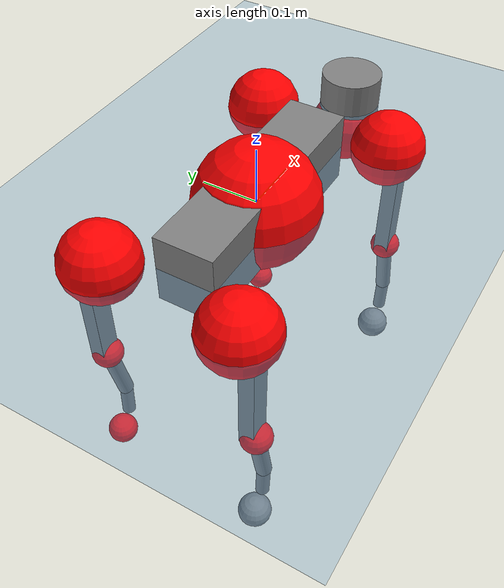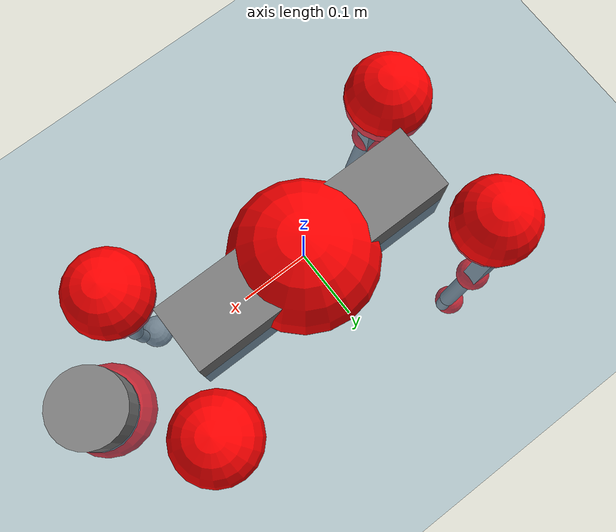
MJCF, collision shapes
<mujoco model="go2">
  <compiler angle="radian" assetdir="assets" balanceinertia="true" inertiafromgeom="false"/>

  <option timestep="0.005" density="1.2" viscosity="2e-05"/>

  <size nkey="1"/>

  <visual>
    <quality shadowsize="8192"/>
    <map shadowclip="0.5"/>
  </visual>

  <default>
    <default class="/">
      <geom contype="0" conaffinity="0" group="1" solref="-1000 -80"/>
      <site size="0.01 0.005 0.005" group="5"/>
      <general forcelimited="true" biastype="affine" gainprm="20" biasprm="0 -20 -0.5"/>
      <default class="go2">
        <joint armature="0.01" damping="0.01" frictionloss="0.2"/>
        <geom condim="1" margin="0.001"/>
        <default class="visual">
          <geom type="mesh" group="2"/>
        </default>
        <default class="collision">
          <geom group="3"/>
          <default class="foot">
            <geom size="0.022 0 0" condim="6" priority="1" friction="0.8 0.02 0.01" solimp="0.015 1 0.022"/>
          </default>
        </default>
        <default class="reward_collision_sphere">
          <geom group="5" rgba="1 0 0 1"/>
        </default>
      </default>
    </default>
  </default>

  <asset>
    <texture type="skybox" colorspace="auto" name="//unnamed_texture_0" builtin="gradient" rgb1="0.95 0.95 0.95" rgb2="0.95 0.95 0.95" width="100" height="600"/>
    <texture type="2d" colorspace="auto" name="texplane" builtin="checker" rgb1="0.345 0.575 0.748" rgb2="0.345 0.575 0.748" markrgb="1 1 1" width="512" height="512"/>
    <material name="MatPlane" class="/" texture="texplane" texuniform="true" texrepeat="2 2" specular="0.9"/>
    <material name="metal" class="/" rgba="0.9 0.95 0.95 1"/>
    <material name="black" class="/" rgba="0 0 0 1"/>
    <material name="white" class="/"/>
    <material name="gray" class="/" rgba="0.671705 0.692426 0.77427 1"/>
    <mesh name="base_0" class="/" file="base_0.obj"/>
    <mesh name="base_1" class="/" file="base_1.obj"/>
    <mesh name="base_2" class="/" file="base_2.obj"/>
    <mesh name="base_3" class="/" file="base_3.obj"/>
    <mesh name="base_4" class="/" file="base_4.obj"/>
    <mesh name="hip_0" class="/" file="hip_0.obj"/>
    <mesh name="hip_1" class="/" file="hip_1.obj"/>
    <mesh name="thigh_0" class="/" file="thigh_0.obj"/>
    <mesh name="thigh_1" class="/" file="thigh_1.obj"/>
    <mesh name="thigh_mirror_0" class="/" file="thigh_mirror_0.obj"/>
    <mesh name="thigh_mirror_1" class="/" file="thigh_mirror_1.obj"/>
    <mesh name="calf_0" class="/" file="calf_0.obj"/>
    <mesh name="calf_1" class="/" file="calf_1.obj"/>
    <mesh name="calf_mirror_0" class="/" file="calf_mirror_0.obj"/>
    <mesh name="calf_mirror_1" class="/" file="calf_mirror_1.obj"/>
    <mesh name="foot" class="/" file="foot.obj"/>
  </asset>

  <worldbody>
    <geom name="floor" class="/" size="100 100 0.125" type="plane" group="0" material="MatPlane"/>
    <light name="toplight_shadow" class="/" pos="0 0 5" dir="0.0990148 0.0990148 -0.990148" type="directional" ambient="0.04 0.04 0.04" diffuse="0.55 0.55 0.55" specular="0.12 0.12 0.12"/>
    <light name="toplight_fill" class="/" pos="0 0 5" dir="0.0990148 0.0990148 -0.990148" type="directional" castshadow="false" ambient="0.04 0.04 0.04" diffuse="0.3 0.3 0.3" specular="0.08 0.08 0.08"/>
    <body name="trunk" childclass="go2" pos="0.000810403 0.000434081 -0.0020044" quat="0.999999 0.00157351 -0.000126079 0.000272376">
      <inertial pos="0.0370419 0.00854017 -0.00269931" quat="0.000334544 0.712558 -0.00214673 0.70161" mass="7.95483" diaginertia="0.278701 0.102695 0.0325594"/>
      <joint name="//unnamed_joint_0" type="free" armature="0" damping="0" frictionloss="0"/>
      <geom name="//unnamed_geom_1" class="visual" material="black" mesh="base_0"/>
      <geom name="//unnamed_geom_2" class="visual" material="black" mesh="base_1"/>
      <geom name="//unnamed_geom_3" class="visual" material="black" mesh="base_2"/>
      <geom name="//unnamed_geom_4" class="visual" material="white" mesh="base_3"/>
      <geom name="//unnamed_geom_5" class="visual" material="gray" mesh="base_4"/>
      <geom name="trunk_1" class="collision" size="0.204938 0.0509348 0.0621023" type="box"/>
      <geom name="trunk_2" class="collision" size="0.0544757 0.0490281" pos="0.34317 0 0.0105472" type="cylinder"/>
      <geom name="trunk_3" class="collision" size="0.0512072" pos="0.352803 0 -0.0632834"/>
      <geom name="//unnamed_geom_9" class="reward_collision_sphere" size="0.108951"/>
      <geom name="//unnamed_geom_10" class="reward_collision_sphere" size="0.0653708" pos="0.33715 0 -0.0474626"/>
      <site name="imu" pos="-0.0792513 0.00275523 0.0928208" size="0.0108951"/>
      <camera name="track" pos="0 -2.01942 0" quat="0.707107 0.707107 0 0" mode="trackcom"/>
      <camera name="ego_camera" pos="0.375681 0 0.0474626" quat="-0.5 -0.5 0.5 0.5"/>
      <body name="FL_hip" pos="0.240071 0.0546449 0.00746843" quat="1 0.000355523 0.000323182 0.000282438">
        <inertial pos="-0.00624156 0.00890326 -0.00153987" quat="0.497932 0.498915 0.505331 0.497783" mass="0.954325" diaginertia="0.00261326 0.000784982 0.000718745"/>
        <joint name="FL_hip_joint" pos="0 0 0" axis="0.999792 0.00203995 -0.0202868" stiffness="0.0283318" range="-1.04169 0.989913" armature="0.011842" damping="0" frictionloss="0.280882"/>
        <geom name="//unnamed_geom_11" class="visual" material="metal" mesh="hip_0"/>
        <geom name="//unnamed_geom_12" class="visual" material="gray" mesh="hip_1"/>
        <geom name="//unnamed_geom_13" class="collision" size="0.0501176 0.0217903" pos="0 0.0807769 0" quat="0.707107 0.707107 0 0" type="cylinder"/>
        <geom name="//unnamed_geom_14" class="reward_collision_sphere" size="0.0653708" pos="0 0.0706798 0"/>
        <body name="FL_thigh" pos="0.00470225 0.085969 -0.00416943" quat="0.99999 0.000387701 -0.00441677 0.000978825">
          <inertial pos="-0.00240387 -0.0217175 -0.0388292" quat="0.819575 0.0959326 -0.0508426 0.562591" mass="1.57663" diaginertia="0.0148287 0.00684528 0.00110674"/>
          <joint name="FL_thigh_joint" pos="0 0 0" axis="-0.00203708 0.999998 0.000751614" range="-1.74416 3.37743" armature="0.0113874" damping="0" frictionloss="0.267868"/>
          <geom name="//unnamed_geom_15" class="visual" material="metal" mesh="thigh_0"/>
          <geom name="//unnamed_geom_16" class="visual" material="gray" mesh="thigh_1"/>
          <geom name="//unnamed_geom_17" class="collision" size="0.116033 0.0133465 0.0185217" pos="0 0 -0.112328" quat="0.707107 0 0.707107 0" type="box"/>
          <body name="FL_calf" pos="-0.00176365 -0.00902444 -0.222328" quat="1 7.50231e-05 0.000147489 0.000214461">
            <inertial pos="0.006157 -0.000654251 -0.145524" quat="0.711375 0.00978581 -0.00386897 0.702733" mass="0.315424" diaginertia="0.00413121 0.0015552 6.8975e-05"/>
            <joint name="FL_calf_joint" pos="0 0 0" axis="0.00292275 0.999995 0.000778215" stiffness="0.0414349" range="-2.83463 -0.805197" armature="0.00998725" damping="0.0151035" frictionloss="0.235256"/>
            <geom name="//unnamed_geom_18" class="visual" material="gray" mesh="calf_0"/>
            <geom name="//unnamed_geom_19" class="visual" material="black" mesh="calf_1"/>
            <geom name="FL_calf0" class="collision" size="0.0130742 0.0653708" pos="0.00963285 0 -0.0632834" quat="0.994493 0 -0.104807 0" type="cylinder"/>
            <geom name="//unnamed_geom_21" class="collision" size="0.0119847 0.0354092" pos="0.0240821 0 -0.156099" quat="0.999688 0 0.0249974 0" type="cylinder"/>
            <geom name="//unnamed_geom_22" class="visual" pos="0 0 -0.224656" quat="1 0 0 0" material="black" mesh="foot"/>
            <geom name="FL_foot" class="foot" size="0.0259131" pos="-0.00240821 0 -0.224656"/>
            <geom name="//unnamed_geom_24" class="reward_collision_sphere" size="0.0272379"/>
            <geom name="//unnamed_geom_25" class="reward_collision_sphere" size="0.0272379" pos="-0.00240821 0 -0.224656"/>
            <site name="FL_foot" class="foot" pos="-0.00240821 0 -0.224656" size="0.0108951"/>
          </body>
        </body>
      </body>
      <body name="FR_hip" pos="0.242847 -0.0512719 0.00066921" quat="0.999999 0.000735902 0.000838512 0.000243362">
        <inertial pos="-0.00119026 0.00993607 0.00551697" quat="0.465957 0.544956 0.482314 0.503269" mass="0.864868" diaginertia="0.00245913 0.000554047 0.000683966"/>
        <joint name="FR_hip_joint" pos="0 0 0" axis="0.999271 0.00679076 0.0375739" range="-1.03684 1.0226" armature="0.0109925" damping="0.0403962" frictionloss="0.193184"/>
        <geom name="//unnamed_geom_26" class="visual" pos="0 -3.92129e-10 -1.68192e-08" quat="4.63268e-05 1 0 0" material="metal" mesh="hip_0"/>
        <geom name="//unnamed_geom_27" class="visual" pos="0 -6.35688e-10 4.16003e-08" quat="4.63268e-05 1 0 0" material="gray" mesh="hip_1"/>
        <geom name="//unnamed_geom_28" class="collision" size="0.0501176 0.0217903" pos="0 -0.0807769 0" quat="0.707107 0.707107 0 0" type="cylinder"/>
        <geom name="//unnamed_geom_29" class="reward_collision_sphere" size="0.0653708" pos="0 -0.0706798 0"/>
        <body name="FR_thigh" pos="-0.00436884 -0.0920175 0.0082565" quat="0.999992 -0.00197171 -0.00343678 0.000795259">
          <inertial pos="-0.0143608 0.0239974 -0.0298607" quat="0.567703 -0.0189998 0.0692926 0.820092" mass="1.35185" diaginertia="0.0160393 0.00672995 0.00100551"/>
          <joint name="FR_thigh_joint" pos="0 0 0" axis="-0.0167941 -0.999845 -0.00537858" range="-3.53075 1.56941" armature="0.0136564" damping="0" frictionloss="0.186658"/>
          <geom name="//unnamed_geom_30" class="visual" material="metal" mesh="thigh_mirror_0"/>
          <geom name="//unnamed_geom_31" class="visual" material="gray" mesh="thigh_mirror_1"/>
          <geom name="//unnamed_geom_32" class="collision" size="0.116033 0.0133465 0.0185217" pos="0 0 -0.112328" quat="0.707107 0 0.707107 0" type="box"/>
          <body name="FR_calf" pos="0.00471752 -0.000594757 -0.225203" quat="0.999997 -0.00150937 0.00107124 -0.00139592">
            <inertial pos="0.0146715 0.000697549 -0.14921" quat="0.730274 0.0315195 -0.00268835 0.682421" mass="0.266782" diaginertia="0.0033098 0.00145434 6.38405e-05"/>
            <joint name="FR_calf_joint" pos="0 0 0" axis="-0.023238 -0.999624 -0.0145687" stiffness="0.0480084" range="1.03761 2.82145" armature="0.00646681" damping="0" frictionloss="0.182513"/>
            <geom name="//unnamed_geom_33" class="visual" material="gray" mesh="calf_mirror_0"/>
            <geom name="//unnamed_geom_34" class="visual" material="black" mesh="calf_mirror_1"/>
            <geom name="FR_calf0" class="collision" size="0.0141637 0.0653708" pos="0.0120411 0 -0.0632834" quat="0.995004 0 -0.0998334 0" type="cylinder"/>
            <geom name="//unnamed_geom_36" class="collision" size="0.0119847 0.0354092" pos="0.0240821 0 -0.156099" quat="0.999688 0 0.0249974 0" type="cylinder"/>
            <geom name="//unnamed_geom_37" class="visual" pos="0 0 -0.224656" quat="1 0 0 0" material="black" mesh="foot"/>
            <geom name="FR_foot" class="foot" size="0.0304323" pos="-0.00240821 0 -0.224656"/>
            <geom name="//unnamed_geom_39" class="reward_collision_sphere" size="0.0272379"/>
            <geom name="//unnamed_geom_40" class="reward_collision_sphere" size="0.0272379" pos="-0.00240821 0 -0.224656"/>
            <site name="FR_foot" class="foot" pos="-0.00240821 0 -0.224656" size="0.0108951"/>
          </body>
        </body>
      </body>
      <body name="RL_hip" pos="-0.241644 0.0529234 0.00878167" quat="0.999999 -0.00076368 -0.000462117 -0.0010065">
        <inertial pos="0.0069706 -0.00401023 0.0104959" quat="0.501644 0.500691 0.470793 0.525373" mass="0.770149" diaginertia="0.00166461 0.000548746 0.000576722"/>
        <joint name="RL_hip_joint" pos="0 0 0" axis="-0.999303 -0.0366481 0.0071084" stiffness="0.0156635" range="-1.07483 1.00568" armature="0.00981198" damping="0.0543569" frictionloss="0.222307"/>
        <geom name="//unnamed_geom_41" class="visual" pos="-1.30136e-09 0 -2.55096e-07" quat="4.63268e-05 0 1 0" material="metal" mesh="hip_0"/>
        <geom name="//unnamed_geom_42" class="visual" pos="-2.10965e-09 0 -2.26234e-07" quat="4.63268e-05 0 1 0" material="gray" mesh="hip_1"/>
        <geom name="//unnamed_geom_43" class="collision" size="0.0501176 0.0217903" pos="0 0.0807769 0" quat="0.707107 0.707107 0 0" type="cylinder"/>
        <geom name="//unnamed_geom_44" class="reward_collision_sphere" size="0.0653708" pos="0 0.0706798 0"/>
        <body name="RL_thigh" pos="-0.000772489 0.0990509 -0.00351494" quat="0.999999 0.000804246 -0.000810421 0.000217554">
          <inertial pos="0.00710788 -0.0243897 -0.0240633" quat="0.826382 0.0816767 -0.022708 0.556692" mass="1.66019" diaginertia="0.0184774 0.00609646 0.00120078"/>
          <joint name="RL_thigh_joint" pos="0 0 0" axis="-0.0242529 0.999696 0.00447832" range="-0.444902 4.65151" armature="0.0108456" damping="0.042342" frictionloss="0.218674"/>
          <geom name="//unnamed_geom_45" class="visual" material="metal" mesh="thigh_0"/>
          <geom name="//unnamed_geom_46" class="visual" material="gray" mesh="thigh_1"/>
          <geom name="//unnamed_geom_47" class="collision" size="0.116033 0.0133465 0.0185217" pos="0 0 -0.112328" quat="0.707107 0 0.707107 0" type="box"/>
          <body name="RL_calf" pos="0.00275163 -0.00285893 -0.221733" quat="1 -5.50858e-05 0.000185892 2.42335e-06">
            <inertial pos="0.00362555 -0.00940252 -0.147466" quat="0.710337 0.0275699 -0.00914766 0.703262" mass="0.266794" diaginertia="0.00345283 0.00117096 5.80721e-05"/>
            <joint name="RL_calf_joint" pos="0 0 0" axis="-0.00115716 0.999932 0.0116373" range="-2.89092 -0.715764" armature="0.00569791" damping="0" frictionloss="0.303828"/>
            <geom name="//unnamed_geom_48" class="visual" material="gray" mesh="calf_0"/>
            <geom name="//unnamed_geom_49" class="visual" material="black" mesh="calf_1"/>
            <geom name="RL_calf0" class="collision" size="0.0141637 0.0653708" pos="0.0120411 0 -0.0632834" quat="0.995004 0 -0.0998334 0" type="cylinder"/>
            <geom name="//unnamed_geom_51" class="collision" size="0.0119847 0.0354092" pos="0.0240821 0 -0.156099" quat="0.999688 0 0.0249974 0" type="cylinder"/>
            <geom name="//unnamed_geom_52" class="visual" pos="0 0 -0.224656" quat="1 0 0 0" material="black" mesh="foot"/>
            <geom name="RL_foot" class="foot" size="0.0212985" pos="-0.00240821 0 -0.224656"/>
            <geom name="//unnamed_geom_54" class="reward_collision_sphere" size="0.0272379"/>
            <geom name="//unnamed_geom_55" class="reward_collision_sphere" size="0.0272379" pos="-0.00240821 0 -0.224656"/>
            <site name="RL_foot" class="foot" pos="-0.00240821 0 -0.224656" size="0.0108951"/>
          </body>
        </body>
      </body>
      <body name="RR_hip" pos="-0.244531 -0.0455111 -0.00282904" quat="1 7.60132e-06 -0.0007959 7.2952e-05">
        <inertial pos="0.0114234 -0.00621261 0.0101418" quat="0.480791 0.547011 0.472751 0.496111" mass="0.901724" diaginertia="0.00256164 0.000727718 0.000715102"/>
        <joint name="RR_hip_joint" pos="0 0 0" axis="-0.998876 -0.0250909 -0.0402225" stiffness="0.00763496" range="-0.867741 0.964544" armature="0.0124187" damping="0.0294219" frictionloss="0.214575"/>
        <geom name="//unnamed_geom_56" class="visual" pos="1.29463e-09 -3.92129e-10 -2.38277e-07" quat="2.14617e-09 4.63268e-05 4.63268e-05 -1" material="metal" mesh="hip_0"/>
        <geom name="//unnamed_geom_57" class="visual" pos="2.1263e-09 -6.35688e-10 -2.67834e-07" quat="2.14617e-09 4.63268e-05 4.63268e-05 -1" material="gray" mesh="hip_1"/>
        <geom name="//unnamed_geom_58" class="collision" size="0.0501176 0.0217903" pos="0 -0.0807769 0" quat="0.707107 0.707107 0 0" type="cylinder"/>
        <geom name="//unnamed_geom_59" class="reward_collision_sphere" size="0.0653708" pos="0 -0.0706798 0"/>
        <body name="RR_thigh" pos="-0.0105532 -0.0989528 0.00897936" quat="0.999992 0.00387616 0.000711867 -0.00108378">
          <inertial pos="-0.00302203 0.017725 -0.0350068" quat="0.552504 -0.0214053 0.0844589 0.828944" mass="1.72466" diaginertia="0.0174528 0.00641864 0.00120921"/>
          <joint name="RR_thigh_joint" pos="0 0 0" axis="0.000394604 -0.999999 0.00115433" range="-4.63604 0.552917" armature="0.0107508" damping="0" frictionloss="0.206896"/>
          <geom name="//unnamed_geom_60" class="visual" material="metal" mesh="thigh_mirror_0"/>
          <geom name="//unnamed_geom_61" class="visual" material="gray" mesh="thigh_mirror_1"/>
          <geom name="//unnamed_geom_62" class="collision" size="0.116033 0.0133465 0.0185217" pos="0 0 -0.112328" quat="0.707107 0 0.707107 0" type="box"/>
          <body name="RR_calf" pos="-0.000516875 -0.00787733 -0.225407" quat="0.999988 -0.00196481 0.000614562 -0.00441185">
            <inertial pos="-9.14908e-05 0.00384448 -0.150207" quat="0.721493 -0.0163476 0.0222327 0.691872" mass="0.299575" diaginertia="0.00386089 0.00152969 7.2908e-05"/>
            <joint name="RR_calf_joint" pos="0 0 0" axis="0.00201542 -0.99979 -0.0203949" range="0.850657 2.53895" armature="0.0109458" damping="0" frictionloss="0.183325"/>
            <geom name="//unnamed_geom_63" class="visual" material="gray" mesh="calf_mirror_0"/>
            <geom name="//unnamed_geom_64" class="visual" material="black" mesh="calf_mirror_1"/>
            <geom name="RR_calf0" class="collision" size="0.0141637 0.0653708" pos="0.0120411 0 -0.0632834" quat="0.995004 0 -0.0998334 0" type="cylinder"/>
            <geom name="//unnamed_geom_66" class="collision" size="0.0119847 0.0354092" pos="0.0240821 0 -0.156099" quat="0.999688 0 0.0249974 0" type="cylinder"/>
            <geom name="//unnamed_geom_67" class="visual" pos="0 0 -0.224656" quat="1 0 0 0" material="black" mesh="foot"/>
            <geom name="RR_foot" class="foot" size="0.0294505" pos="-0.00240821 0 -0.224656"/>
            <geom name="//unnamed_geom_69" class="reward_collision_sphere" size="0.0272379"/>
            <geom name="//unnamed_geom_70" class="reward_collision_sphere" size="0.0272379" pos="-0.00240821 0 -0.224656"/>
            <site name="RR_foot" class="foot" pos="-0.00240821 0 -0.224656" size="0.0108951"/>
          </body>
        </body>
      </body>
    </body>
  </worldbody>

  <contact>
    <pair class="/" geom1="floor" geom2="FL_foot" name="//unnamed_contact_0"/>
    <pair class="/" geom1="floor" geom2="FR_foot" name="//unnamed_contact_1"/>
    <pair class="/" geom1="floor" geom2="RL_foot" name="//unnamed_contact_2"/>
    <pair class="/" geom1="floor" geom2="RR_foot" name="//unnamed_contact_3"/>
  </contact>

  <actuator>
    <general name="FL_hip" class="/" joint="FL_hip_joint" forcerange="-32.7905 32.7905" gainprm="24.3116" biasprm="0 -24.3116 -0.606341"/>
    <general name="FL_thigh" class="/" joint="FL_thigh_joint" forcerange="-35.7443 35.7443" gainprm="24.3116" biasprm="0 -24.3116 -0.606341"/>
    <general name="FL_calf" class="/" joint="FL_calf_joint" forcerange="-52.9758 52.9758" gainprm="24.3116" biasprm="0 -24.3116 -0.606341"/>
    <general name="FR_hip" class="/" joint="FR_hip_joint" forcerange="-27.4944 27.4944" gainprm="24.3116" biasprm="0 -24.3116 -0.606341"/>
    <general name="FR_thigh" class="/" joint="FR_thigh_joint" forcerange="-19.774 19.774" gainprm="24.3116" biasprm="0 -24.3116 -0.606341"/>
    <general name="FR_calf" class="/" joint="FR_calf_joint" forcerange="-49.377 49.377" gainprm="24.3116" biasprm="0 -24.3116 -0.606341"/>
    <general name="RL_hip" class="/" joint="RL_hip_joint" forcerange="-24.8931 24.8931" gainprm="24.3116" biasprm="0 -24.3116 -0.606341"/>
    <general name="RL_thigh" class="/" joint="RL_thigh_joint" forcerange="-32.2679 32.2679" gainprm="24.3116" biasprm="0 -24.3116 -0.606341"/>
    <general name="RL_calf" class="/" joint="RL_calf_joint" forcerange="-45.4893 45.4893" gainprm="24.3116" biasprm="0 -24.3116 -0.606341"/>
    <general name="RR_hip" class="/" joint="RR_hip_joint" forcerange="-25.0731 25.0731" gainprm="24.3116" biasprm="0 -24.3116 -0.606341"/>
    <general name="RR_thigh" class="/" joint="RR_thigh_joint" forcerange="-17.6558 17.6558" gainprm="24.3116" biasprm="0 -24.3116 -0.606341"/>
    <general name="RR_calf" class="/" joint="RR_calf_joint" forcerange="-49.1574 49.1574" gainprm="24.3116" biasprm="0 -24.3116 -0.606341"/>
  </actuator>

  <sensor>
    <gyro site="imu" name="imu_angular_velocity"/>
    <velocimeter site="imu" name="imu_linear_velocity"/>
    <framelinvel objtype="site" objname="FL_foot" name="FL_foot_global_linear_velocity"/>
    <framelinvel objtype="site" objname="FR_foot" name="FR_foot_global_linear_velocity"/>
    <framelinvel objtype="site" objname="RL_foot" name="RL_foot_global_linear_velocity"/>
    <framelinvel objtype="site" objname="RR_foot" name="RR_foot_global_linear_velocity"/>
  </sensor>

  <keyframe>
    <key name="home" qpos="0 0 0.325 1 0 0 0 0.1 0.8 -1.5 -0.1 -0.8 1.5 -0.1 0.8 -1.5 0.1 -0.8 1.5"/>
  </keyframe>
</mujoco>
